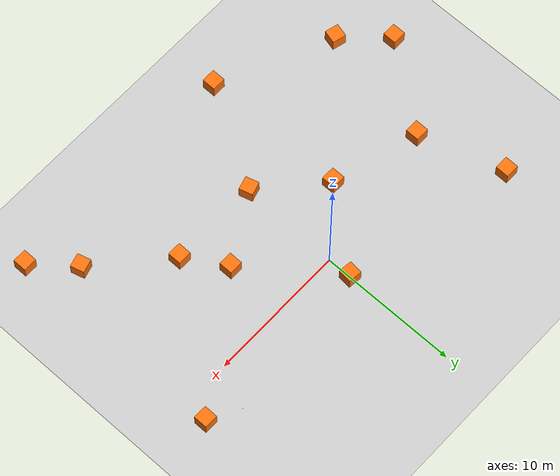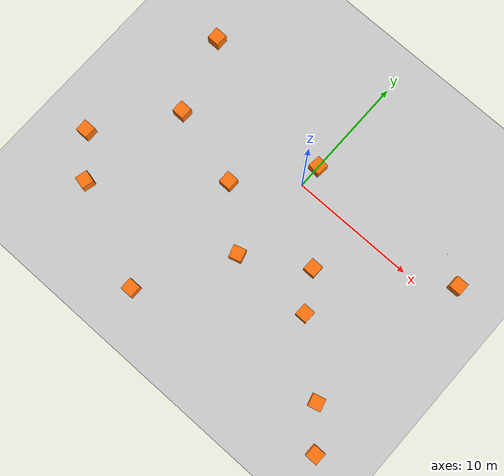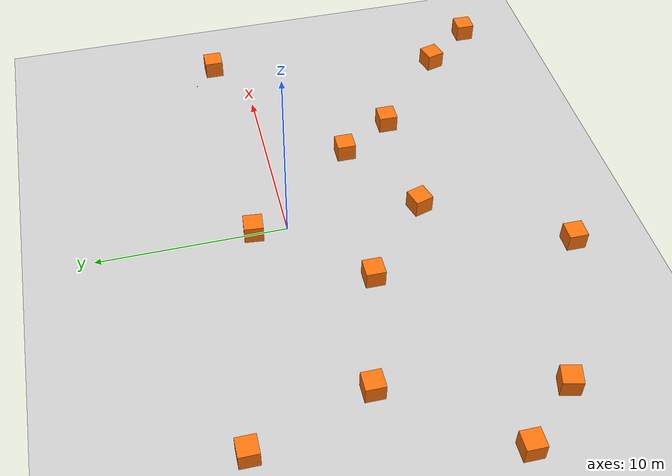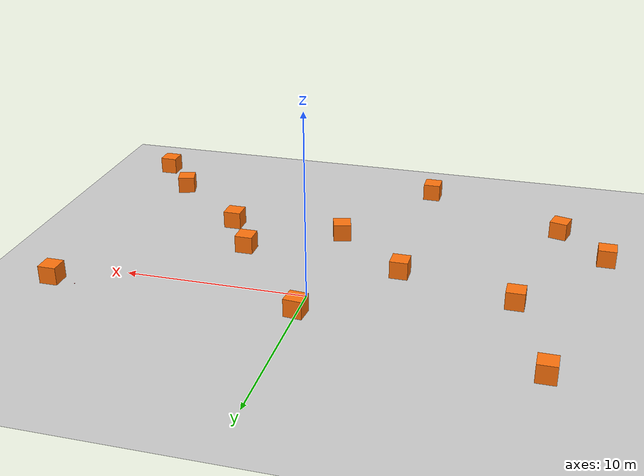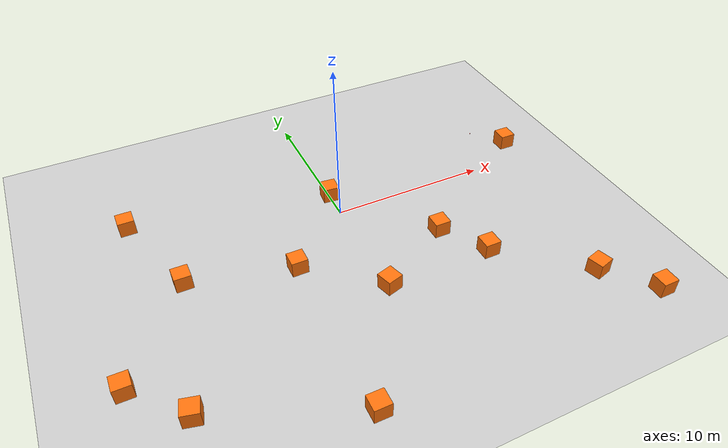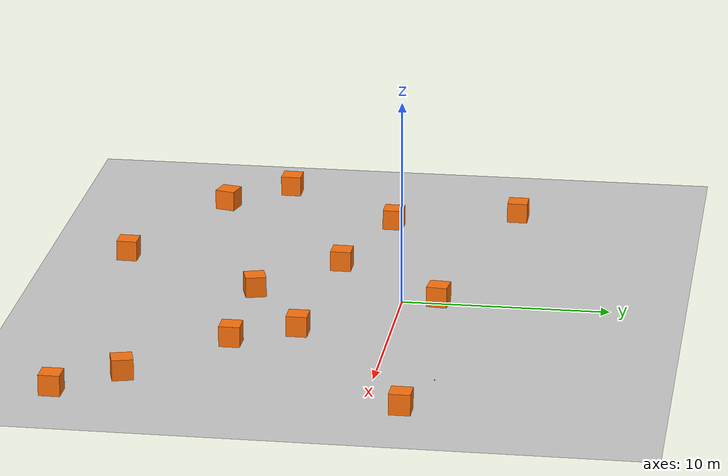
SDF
<sdf version="1.6">
 <world name="default">
  <model name="ground_plane">
   <static>1</static>
   <link name="link">
    <collision name="collision">
     <geometry><plane><normal>0 0 1</normal><size>100 100</size></plane></geometry>
     <surface><friction><ode><mu>1</mu><mu2>1</mu2></ode></friction></surface>
    </collision>
    <visual name="visual">
     <cast_shadows>0</cast_shadows>
     <geometry><plane><normal>0 0 1</normal><size>100 100</size></plane></geometry>
     <material>
      <script><uri>file://media/materials/scripts/gazebo.material</uri><name>Gazebo/Grey</name></script>
     </material>
    </visual>
    <velocity_decay><linear>0</linear><angular>0</angular></velocity_decay>
   </link>
  </model>
  <model name="imported_static_obstacles">
   <link name="link_0">
    <inertial>
     <mass>1</mass>
     <inertia>
      <ixx>0.166667</ixx>
      <ixy>0</ixy>
      <ixz>0</ixz>
      <iyy>0.166667</iyy>
      <iyz>0</iyz>
      <izz>0.166667</izz>
     </inertia>
    </inertial>
    <pose>-12.461223867901888 4.331931329650576 0 0 0 -0.006156329724651646</pose>
    <visual name="visual">
     <geometry><box><size>1 1 1</size></box></geometry>
     <material><ambient>1 0.45 0.05 1</ambient><diffuse>1 0.45 0.05 1</diffuse></material>
    </visual>
    <collision name="collision">
     <geometry><box><size>1 1 1</size></box></geometry>
     <surface>
      <friction>
       <ode><mu>1</mu><mu2>1</mu2><fdir1>0 0 0</fdir1><slip1>0</slip1><slip2>0</slip2></ode>
       <torsional>
        <coefficient>1</coefficient>
        <patch_radius>0</patch_radius>
        <surface_radius>0</surface_radius>
        <use_patch_radius>1</use_patch_radius>
        <ode><slip>0</slip></ode>
       </torsional>
      </friction>
      <bounce><restitution_coefficient>0</restitution_coefficient><threshold>1e+06</threshold></bounce>
      <contact>
       <collide_without_contact>0</collide_without_contact>
       <collide_without_contact_bitmask>1</collide_without_contact_bitmask>
       <collide_bitmask>1</collide_bitmask>
       <ode>
        <soft_cfm>0</soft_cfm>
        <soft_erp>0.2</soft_erp>
        <kp>1e+13</kp>
        <kd>1</kd>
        <max_vel>0.01</max_vel>
        <min_depth>0</min_depth>
       </ode>
       <bullet>
        <split_impulse>1</split_impulse>
        <split_impulse_penetration_threshold>-0.01</split_impulse_penetration_threshold>
        <soft_cfm>0</soft_cfm>
        <soft_erp>0.2</soft_erp>
        <kp>1e+13</kp>
        <kd>1</kd>
       </bullet>
      </contact>
     </surface>
    </collision>
   </link>
   <link name="link_1">
    <inertial>
     <mass>1</mass>
     <inertia>
      <ixx>0.166667</ixx>
      <ixy>0</ixy>
      <ixz>0</ixz>
      <iyy>0.166667</iyy>
      <iyz>0</iyz>
      <izz>0.166667</izz>
     </inertia>
    </inertial>
    <pose>-10.52326350688892 -1.7680915085717706 0 0 0 -0.006156329724651646</pose>
    <visual name="visual">
     <geometry><box><size>1 1 1</size></box></geometry>
     <material><ambient>1 0.45 0.05 1</ambient><diffuse>1 0.45 0.05 1</diffuse></material>
    </visual>
    <collision name="collision">
     <geometry><box><size>1 1 1</size></box></geometry>
     <surface>
      <friction>
       <ode><mu>1</mu><mu2>1</mu2><fdir1>0 0 0</fdir1><slip1>0</slip1><slip2>0</slip2></ode>
       <torsional>
        <coefficient>1</coefficient>
        <patch_radius>0</patch_radius>
        <surface_radius>0</surface_radius>
        <use_patch_radius>1</use_patch_radius>
        <ode><slip>0</slip></ode>
       </torsional>
      </friction>
      <bounce><restitution_coefficient>0</restitution_coefficient><threshold>1e+06</threshold></bounce>
      <contact>
       <collide_without_contact>0</collide_without_contact>
       <collide_without_contact_bitmask>1</collide_without_contact_bitmask>
       <collide_bitmask>1</collide_bitmask>
       <ode>
        <soft_cfm>0</soft_cfm>
        <soft_erp>0.2</soft_erp>
        <kp>1e+13</kp>
        <kd>1</kd>
        <max_vel>0.01</max_vel>
        <min_depth>0</min_depth>
       </ode>
       <bullet>
        <split_impulse>1</split_impulse>
        <split_impulse_penetration_threshold>-0.01</split_impulse_penetration_threshold>
        <soft_cfm>0</soft_cfm>
        <soft_erp>0.2</soft_erp>
        <kp>1e+13</kp>
        <kd>1</kd>
       </bullet>
      </contact>
     </surface>
    </collision>
   </link>
   <link name="link_10">
    <inertial>
     <mass>1</mass>
     <inertia>
      <ixx>0.166667</ixx>
      <ixy>0</ixy>
      <ixz>0</ixz>
      <iyy>0.166667</iyy>
      <iyz>0</iyz>
      <izz>0.166667</izz>
     </inertia>
    </inertial>
    <pose>11.26761802771101 -11.378782120712913 0 0 0 0.2721433292804598</pose>
    <visual name="visual">
     <geometry><box><size>1 1 1</size></box></geometry>
     <material><ambient>1 0.45 0.05 1</ambient><diffuse>1 0.45 0.05 1</diffuse></material>
    </visual>
    <collision name="collision">
     <geometry><box><size>1 1 1</size></box></geometry>
     <surface>
      <friction>
       <ode><mu>1</mu><mu2>1</mu2><fdir1>0 0 0</fdir1><slip1>0</slip1><slip2>0</slip2></ode>
       <torsional>
        <coefficient>1</coefficient>
        <patch_radius>0</patch_radius>
        <surface_radius>0</surface_radius>
        <use_patch_radius>1</use_patch_radius>
        <ode><slip>0</slip></ode>
       </torsional>
      </friction>
      <bounce><restitution_coefficient>0</restitution_coefficient><threshold>1e+06</threshold></bounce>
      <contact>
       <collide_without_contact>0</collide_without_contact>
       <collide_without_contact_bitmask>1</collide_without_contact_bitmask>
       <collide_bitmask>1</collide_bitmask>
       <ode>
        <soft_cfm>0</soft_cfm>
        <soft_erp>0.2</soft_erp>
        <kp>1e+13</kp>
        <kd>1</kd>
        <max_vel>0.01</max_vel>
        <min_depth>0</min_depth>
       </ode>
       <bullet>
        <split_impulse>1</split_impulse>
        <split_impulse_penetration_threshold>-0.01</split_impulse_penetration_threshold>
        <soft_cfm>0</soft_cfm>
        <soft_erp>0.2</soft_erp>
        <kp>1e+13</kp>
        <kd>1</kd>
       </bullet>
      </contact>
     </surface>
    </collision>
   </link>
   <link name="link_11">
    <inertial>
     <mass>1</mass>
     <inertia>
      <ixx>0.166667</ixx>
      <ixy>0</ixy>
      <ixz>0</ixz>
      <iyy>0.166667</iyy>
      <iyz>0</iyz>
      <izz>0.166667</izz>
     </inertia>
    </inertial>
    <pose>-4.225119465115612 -14.161613276317903 0 0 0 -0.006156329724651646</pose>
    <visual name="visual">
     <geometry><box><size>1 1 1</size></box></geometry>
     <material><ambient>1 0.45 0.05 1</ambient><diffuse>1 0.45 0.05 1</diffuse></material>
    </visual>
    <collision name="collision">
     <geometry><box><size>1 1 1</size></box></geometry>
     <surface>
      <friction>
       <ode><mu>1</mu><mu2>1</mu2><fdir1>0 0 0</fdir1><slip1>0</slip1><slip2>0</slip2></ode>
       <torsional>
        <coefficient>1</coefficient>
        <patch_radius>0</patch_radius>
        <surface_radius>0</surface_radius>
        <use_patch_radius>1</use_patch_radius>
        <ode><slip>0</slip></ode>
       </torsional>
      </friction>
      <bounce><restitution_coefficient>0</restitution_coefficient><threshold>1e+06</threshold></bounce>
      <contact>
       <collide_without_contact>0</collide_without_contact>
       <collide_without_contact_bitmask>1</collide_without_contact_bitmask>
       <collide_bitmask>1</collide_bitmask>
       <ode>
        <soft_cfm>0</soft_cfm>
        <soft_erp>0.2</soft_erp>
        <kp>1e+13</kp>
        <kd>1</kd>
        <max_vel>0.01</max_vel>
        <min_depth>0</min_depth>
       </ode>
       <bullet>
        <split_impulse>1</split_impulse>
        <split_impulse_penetration_threshold>-0.01</split_impulse_penetration_threshold>
        <soft_cfm>0</soft_cfm>
        <soft_erp>0.2</soft_erp>
        <kp>1e+13</kp>
        <kd>1</kd>
       </bullet>
      </contact>
     </surface>
    </collision>
   </link>
   <link name="link_12">
    <inertial>
     <mass>1</mass>
     <inertia>
      <ixx>0.166667</ixx>
      <ixy>0</ixy>
      <ixz>0</ixz>
      <iyy>0.166667</iyy>
      <iyz>0</iyz>
      <izz>0.166667</izz>
     </inertia>
    </inertial>
    <pose>13.553648690360145 -14.161660453875548 0 0 0 -0.006156329724651646</pose>
    <visual name="visual">
     <geometry><box><size>1 1 1</size></box></geometry>
     <material><ambient>1 0.45 0.05 1</ambient><diffuse>1 0.45 0.05 1</diffuse></material>
    </visual>
    <collision name="collision">
     <geometry><box><size>1 1 1</size></box></geometry>
     <surface>
      <friction>
       <ode><mu>1</mu><mu2>1</mu2><fdir1>0 0 0</fdir1><slip1>0</slip1><slip2>0</slip2></ode>
       <torsional>
        <coefficient>1</coefficient>
        <patch_radius>0</patch_radius>
        <surface_radius>0</surface_radius>
        <use_patch_radius>1</use_patch_radius>
        <ode><slip>0</slip></ode>
       </torsional>
      </friction>
      <bounce><restitution_coefficient>0</restitution_coefficient><threshold>1e+06</threshold></bounce>
      <contact>
       <collide_without_contact>0</collide_without_contact>
       <collide_without_contact_bitmask>1</collide_without_contact_bitmask>
       <collide_bitmask>1</collide_bitmask>
       <ode>
        <soft_cfm>0</soft_cfm>
        <soft_erp>0.2</soft_erp>
        <kp>1e+13</kp>
        <kd>1</kd>
        <max_vel>0.01</max_vel>
        <min_depth>0</min_depth>
       </ode>
       <bullet>
        <split_impulse>1</split_impulse>
        <split_impulse_penetration_threshold>-0.01</split_impulse_penetration_threshold>
        <soft_cfm>0</soft_cfm>
        <soft_erp>0.2</soft_erp>
        <kp>1e+13</kp>
        <kd>1</kd>
       </bullet>
      </contact>
     </surface>
    </collision>
   </link>
   <link name="link_2">
    <inertial>
     <mass>1</mass>
     <inertia>
      <ixx>0.166667</ixx>
      <ixy>0</ixy>
      <ixz>0</ixz>
      <iyy>0.166667</iyy>
      <iyz>0</iyz>
      <izz>0.166667</izz>
     </inertia>
    </inertial>
    <pose>0.021456298749820094 1.7749987186871694 0 0 0 -0.096816216925397</pose>
    <visual name="visual">
     <geometry><box><size>1 1 1</size></box></geometry>
     <material><ambient>1 0.45 0.05 1</ambient><diffuse>1 0.45 0.05 1</diffuse></material>
    </visual>
    <collision name="collision">
     <geometry><box><size>1 1 1</size></box></geometry>
     <surface>
      <friction>
       <ode><mu>1</mu><mu2>1</mu2><fdir1>0 0 0</fdir1><slip1>0</slip1><slip2>0</slip2></ode>
       <torsional>
        <coefficient>1</coefficient>
        <patch_radius>0</patch_radius>
        <surface_radius>0</surface_radius>
        <use_patch_radius>1</use_patch_radius>
        <ode><slip>0</slip></ode>
       </torsional>
      </friction>
      <bounce><restitution_coefficient>0</restitution_coefficient><threshold>1e+06</threshold></bounce>
      <contact>
       <collide_without_contact>0</collide_without_contact>
       <collide_without_contact_bitmask>1</collide_without_contact_bitmask>
       <collide_bitmask>1</collide_bitmask>
       <ode>
        <soft_cfm>0</soft_cfm>
        <soft_erp>0.2</soft_erp>
        <kp>1e+13</kp>
        <kd>1</kd>
        <max_vel>0.01</max_vel>
        <min_depth>0</min_depth>
       </ode>
       <bullet>
        <split_impulse>1</split_impulse>
        <split_impulse_penetration_threshold>-0.01</split_impulse_penetration_threshold>
        <soft_cfm>0</soft_cfm>
        <soft_erp>0.2</soft_erp>
        <kp>1e+13</kp>
        <kd>1</kd>
       </bullet>
      </contact>
     </surface>
    </collision>
   </link>
   <link name="link_3">
    <inertial>
     <mass>1</mass>
     <inertia>
      <ixx>0.166667</ixx>
      <ixy>0</ixy>
      <ixz>0</ixz>
      <iyy>0.166667</iyy>
      <iyz>0</iyz>
      <izz>0.166667</izz>
     </inertia>
    </inertial>
    <pose>13.553866008191092 1.7320403491132759 0 0 0 -0.006156329724651646</pose>
    <visual name="visual">
     <geometry><box><size>1 1 1</size></box></geometry>
     <material><ambient>1 0.45 0.05 1</ambient><diffuse>1 0.45 0.05 1</diffuse></material>
    </visual>
    <collision name="collision">
     <geometry><box><size>1 1 1</size></box></geometry>
     <surface>
      <friction>
       <ode><mu>1</mu><mu2>1</mu2><fdir1>0 0 0</fdir1><slip1>0</slip1><slip2>0</slip2></ode>
       <torsional>
        <coefficient>1</coefficient>
        <patch_radius>0</patch_radius>
        <surface_radius>0</surface_radius>
        <use_patch_radius>1</use_patch_radius>
        <ode><slip>0</slip></ode>
       </torsional>
      </friction>
      <bounce><restitution_coefficient>0</restitution_coefficient><threshold>1e+06</threshold></bounce>
      <contact>
       <collide_without_contact>0</collide_without_contact>
       <collide_without_contact_bitmask>1</collide_without_contact_bitmask>
       <collide_bitmask>1</collide_bitmask>
       <ode>
        <soft_cfm>0</soft_cfm>
        <soft_erp>0.2</soft_erp>
        <kp>1e+13</kp>
        <kd>1</kd>
        <max_vel>0.01</max_vel>
        <min_depth>0</min_depth>
       </ode>
       <bullet>
        <split_impulse>1</split_impulse>
        <split_impulse_penetration_threshold>-0.01</split_impulse_penetration_threshold>
        <soft_cfm>0</soft_cfm>
        <soft_erp>0.2</soft_erp>
        <kp>1e+13</kp>
        <kd>1</kd>
       </bullet>
      </contact>
     </surface>
    </collision>
   </link>
   <link name="link_4">
    <inertial>
     <mass>1</mass>
     <inertia>
      <ixx>0.166667</ixx>
      <ixy>0</ixy>
      <ixz>0</ixz>
      <iyy>0.166667</iyy>
      <iyz>0</iyz>
      <izz>0.166667</izz>
     </inertia>
    </inertial>
    <pose>-4.230370051314318 -3.5075874929141615 0 0 0 -0.006156329724651646</pose>
    <visual name="visual">
     <geometry><box><size>1 1 1</size></box></geometry>
     <material><ambient>1 0.45 0.05 1</ambient><diffuse>1 0.45 0.05 1</diffuse></material>
    </visual>
    <collision name="collision">
     <geometry><box><size>1 1 1</size></box></geometry>
     <surface>
      <friction>
       <ode><mu>1</mu><mu2>1</mu2><fdir1>0 0 0</fdir1><slip1>0</slip1><slip2>0</slip2></ode>
       <torsional>
        <coefficient>1</coefficient>
        <patch_radius>0</patch_radius>
        <surface_radius>0</surface_radius>
        <use_patch_radius>1</use_patch_radius>
        <ode><slip>0</slip></ode>
       </torsional>
      </friction>
      <bounce><restitution_coefficient>0</restitution_coefficient><threshold>1e+06</threshold></bounce>
      <contact>
       <collide_without_contact>0</collide_without_contact>
       <collide_without_contact_bitmask>1</collide_without_contact_bitmask>
       <collide_bitmask>1</collide_bitmask>
       <ode>
        <soft_cfm>0</soft_cfm>
        <soft_erp>0.2</soft_erp>
        <kp>1e+13</kp>
        <kd>1</kd>
        <max_vel>0.01</max_vel>
        <min_depth>0</min_depth>
       </ode>
       <bullet>
        <split_impulse>1</split_impulse>
        <split_impulse_penetration_threshold>-0.01</split_impulse_penetration_threshold>
        <soft_cfm>0</soft_cfm>
        <soft_erp>0.2</soft_erp>
        <kp>1e+13</kp>
        <kd>1</kd>
       </bullet>
      </contact>
     </surface>
    </collision>
   </link>
   <link name="link_5">
    <inertial>
     <mass>1</mass>
     <inertia>
      <ixx>0.166667</ixx>
      <ixy>0</ixy>
      <ixz>0</ixz>
      <iyy>0.166667</iyy>
      <iyz>0</iyz>
      <izz>0.166667</izz>
     </inertia>
    </inertial>
    <pose>4.761735597909215 -4.285690485952344 0 0 0 -0.006156329724651646</pose>
    <visual name="visual">
     <geometry><box><size>1 1 1</size></box></geometry>
     <material><ambient>1 0.45 0.05 1</ambient><diffuse>1 0.45 0.05 1</diffuse></material>
    </visual>
    <collision name="collision">
     <geometry><box><size>1 1 1</size></box></geometry>
     <surface>
      <friction>
       <ode><mu>1</mu><mu2>1</mu2><fdir1>0 0 0</fdir1><slip1>0</slip1><slip2>0</slip2></ode>
       <torsional>
        <coefficient>1</coefficient>
        <patch_radius>0</patch_radius>
        <surface_radius>0</surface_radius>
        <use_patch_radius>1</use_patch_radius>
        <ode><slip>0</slip></ode>
       </torsional>
      </friction>
      <bounce><restitution_coefficient>0</restitution_coefficient><threshold>1e+06</threshold></bounce>
      <contact>
       <collide_without_contact>0</collide_without_contact>
       <collide_without_contact_bitmask>1</collide_without_contact_bitmask>
       <collide_bitmask>1</collide_bitmask>
       <ode>
        <soft_cfm>0</soft_cfm>
        <soft_erp>0.2</soft_erp>
        <kp>1e+13</kp>
        <kd>1</kd>
        <max_vel>0.01</max_vel>
        <min_depth>0</min_depth>
       </ode>
       <bullet>
        <split_impulse>1</split_impulse>
        <split_impulse_penetration_threshold>-0.01</split_impulse_penetration_threshold>
        <soft_cfm>0</soft_cfm>
        <soft_erp>0.2</soft_erp>
        <kp>1e+13</kp>
        <kd>1</kd>
       </bullet>
      </contact>
     </surface>
    </collision>
   </link>
   <link name="link_6">
    <inertial>
     <mass>1</mass>
     <inertia>
      <ixx>0.166667</ixx>
      <ixy>0</ixy>
      <ixz>0</ixz>
      <iyy>0.166667</iyy>
      <iyz>0</iyz>
      <izz>0.166667</izz>
     </inertia>
    </inertial>
    <pose>6.492156537364326 -7.170561329650576 0 0 0 -0.006156329724651646</pose>
    <visual name="visual">
     <geometry><box><size>1 1 1</size></box></geometry>
     <material><ambient>1 0.45 0.05 1</ambient><diffuse>1 0.45 0.05 1</diffuse></material>
    </visual>
    <collision name="collision">
     <geometry><box><size>1 1 1</size></box></geometry>
     <surface>
      <friction>
       <ode><mu>1</mu><mu2>1</mu2><fdir1>0 0 0</fdir1><slip1>0</slip1><slip2>0</slip2></ode>
       <torsional>
        <coefficient>1</coefficient>
        <patch_radius>0</patch_radius>
        <surface_radius>0</surface_radius>
        <use_patch_radius>1</use_patch_radius>
        <ode><slip>0</slip></ode>
       </torsional>
      </friction>
      <bounce><restitution_coefficient>0</restitution_coefficient><threshold>1e+06</threshold></bounce>
      <contact>
       <collide_without_contact>0</collide_without_contact>
       <collide_without_contact_bitmask>1</collide_without_contact_bitmask>
       <collide_bitmask>1</collide_bitmask>
       <ode>
        <soft_cfm>0</soft_cfm>
        <soft_erp>0.2</soft_erp>
        <kp>1e+13</kp>
        <kd>1</kd>
        <max_vel>0.01</max_vel>
        <min_depth>0</min_depth>
       </ode>
       <bullet>
        <split_impulse>1</split_impulse>
        <split_impulse_penetration_threshold>-0.01</split_impulse_penetration_threshold>
        <soft_cfm>0</soft_cfm>
        <soft_erp>0.2</soft_erp>
        <kp>1e+13</kp>
        <kd>1</kd>
       </bullet>
      </contact>
     </surface>
    </collision>
   </link>
   <link name="link_7">
    <inertial>
     <mass>1</mass>
     <inertia>
      <ixx>0.166667</ixx>
      <ixy>0</ixy>
      <ixz>0</ixz>
      <iyy>0.166667</iyy>
      <iyz>0</iyz>
      <izz>0.166667</izz>
     </inertia>
    </inertial>
    <pose>-0.08774192949004414 -7.146430199264699 0 0 0 0.2853004647532156</pose>
    <visual name="visual">
     <geometry><box><size>1 1 1</size></box></geometry>
     <material><ambient>1 0.45 0.05 1</ambient><diffuse>1 0.45 0.05 1</diffuse></material>
    </visual>
    <collision name="collision">
     <geometry><box><size>1 1 1</size></box></geometry>
     <surface>
      <friction>
       <ode><mu>1</mu><mu2>1</mu2><fdir1>0 0 0</fdir1><slip1>0</slip1><slip2>0</slip2></ode>
       <torsional>
        <coefficient>1</coefficient>
        <patch_radius>0</patch_radius>
        <surface_radius>0</surface_radius>
        <use_patch_radius>1</use_patch_radius>
        <ode><slip>0</slip></ode>
       </torsional>
      </friction>
      <bounce><restitution_coefficient>0</restitution_coefficient><threshold>1e+06</threshold></bounce>
      <contact>
       <collide_without_contact>0</collide_without_contact>
       <collide_without_contact_bitmask>1</collide_without_contact_bitmask>
       <collide_bitmask>1</collide_bitmask>
       <ode>
        <soft_cfm>0</soft_cfm>
        <soft_erp>0.2</soft_erp>
        <kp>1e+13</kp>
        <kd>1</kd>
        <max_vel>0.01</max_vel>
        <min_depth>0</min_depth>
       </ode>
       <bullet>
        <split_impulse>1</split_impulse>
        <split_impulse_penetration_threshold>-0.01</split_impulse_penetration_threshold>
        <soft_cfm>0</soft_cfm>
        <soft_erp>0.2</soft_erp>
        <kp>1e+13</kp>
        <kd>1</kd>
       </bullet>
      </contact>
     </surface>
    </collision>
   </link>
   <link name="link_8">
    <inertial>
     <mass>1</mass>
     <inertia>
      <ixx>0.166667</ixx>
      <ixy>0</ixy>
      <ixz>0</ixz>
      <iyy>0.166667</iyy>
      <iyz>0</iyz>
      <izz>0.166667</izz>
     </inertia>
    </inertial>
    <pose>-14.940282412865823 -7.662021329650577 0 0 0 -0.006156329724651646</pose>
    <visual name="visual">
     <geometry><box><size>1 1 1</size></box></geometry>
     <material><ambient>1 0.45 0.05 1</ambient><diffuse>1 0.45 0.05 1</diffuse></material>
    </visual>
    <collision name="collision">
     <geometry><box><size>1 1 1</size></box></geometry>
     <surface>
      <friction>
       <ode><mu>1</mu><mu2>1</mu2><fdir1>0 0 0</fdir1><slip1>0</slip1><slip2>0</slip2></ode>
       <torsional>
        <coefficient>1</coefficient>
        <patch_radius>0</patch_radius>
        <surface_radius>0</surface_radius>
        <use_patch_radius>1</use_patch_radius>
        <ode><slip>0</slip></ode>
       </torsional>
      </friction>
      <bounce><restitution_coefficient>0</restitution_coefficient><threshold>1e+06</threshold></bounce>
      <contact>
       <collide_without_contact>0</collide_without_contact>
       <collide_without_contact_bitmask>1</collide_without_contact_bitmask>
       <collide_bitmask>1</collide_bitmask>
       <ode>
        <soft_cfm>0</soft_cfm>
        <soft_erp>0.2</soft_erp>
        <kp>1e+13</kp>
        <kd>1</kd>
        <max_vel>0.01</max_vel>
        <min_depth>0</min_depth>
       </ode>
       <bullet>
        <split_impulse>1</split_impulse>
        <split_impulse_penetration_threshold>-0.01</split_impulse_penetration_threshold>
        <soft_cfm>0</soft_cfm>
        <soft_erp>0.2</soft_erp>
        <kp>1e+13</kp>
        <kd>1</kd>
       </bullet>
      </contact>
     </surface>
    </collision>
   </link>
   <link name="link_9">
    <inertial>
     <mass>1</mass>
     <inertia>
      <ixx>0.166667</ixx>
      <ixy>0</ixy>
      <ixz>0</ixz>
      <iyy>0.166667</iyy>
      <iyz>0</iyz>
      <izz>0.166667</izz>
     </inertia>
    </inertial>
    <pose>-12.28829618510868 -10.549676055306778 0 0 0 -0.25113499285151586</pose>
    <visual name="visual">
     <geometry><box><size>1 1 1</size></box></geometry>
     <material><ambient>1 0.45 0.05 1</ambient><diffuse>1 0.45 0.05 1</diffuse></material>
    </visual>
    <collision name="collision">
     <geometry><box><size>1 1 1</size></box></geometry>
     <surface>
      <friction>
       <ode><mu>1</mu><mu2>1</mu2><fdir1>0 0 0</fdir1><slip1>0</slip1><slip2>0</slip2></ode>
       <torsional>
        <coefficient>1</coefficient>
        <patch_radius>0</patch_radius>
        <surface_radius>0</surface_radius>
        <use_patch_radius>1</use_patch_radius>
        <ode><slip>0</slip></ode>
       </torsional>
      </friction>
      <bounce><restitution_coefficient>0</restitution_coefficient><threshold>1e+06</threshold></bounce>
      <contact>
       <collide_without_contact>0</collide_without_contact>
       <collide_without_contact_bitmask>1</collide_without_contact_bitmask>
       <collide_bitmask>1</collide_bitmask>
       <ode>
        <soft_cfm>0</soft_cfm>
        <soft_erp>0.2</soft_erp>
        <kp>1e+13</kp>
        <kd>1</kd>
        <max_vel>0.01</max_vel>
        <min_depth>0</min_depth>
       </ode>
       <bullet>
        <split_impulse>1</split_impulse>
        <split_impulse_penetration_threshold>-0.01</split_impulse_penetration_threshold>
        <soft_cfm>0</soft_cfm>
        <soft_erp>0.2</soft_erp>
        <kp>1e+13</kp>
        <kd>1</kd>
       </bullet>
      </contact>
     </surface>
    </collision>
   </link>
   <static>1</static>
   <pose>0 0 0.5 0 0 0</pose>
  </model>
  <model name="red_cube_5">
   <pose>11.5 3.0 0.75 0 0 0</pose>
   <link name="link">
    <inertial>
     <mass>0.1</mass>
     <inertia>
      <ixx>0.000015</ixx>
      <ixy>0</ixy>
      <ixz>0</ixz>
      <iyy>0.000015</iyy>
      <iyz>0</iyz>
      <izz>0.000015</izz>
     </inertia>
    </inertial>
    <gravity>0</gravity>
    <collision name="collision">
     <laser_retro>130</laser_retro>
     <geometry><box><size>0.03 0.03 0.03</size></box></geometry>
     <surface><contact><collide_bitmask>0</collide_bitmask></contact></surface>
    </collision>
    <visual name="visual">
     <geometry><box><size>0.03 0.03 0.03</size></box></geometry>
     <material><ambient>1 0 0 1</ambient><diffuse>1 0 0 1</diffuse></material>
    </visual>
   </link>
  </model>
 </world>
</sdf>
